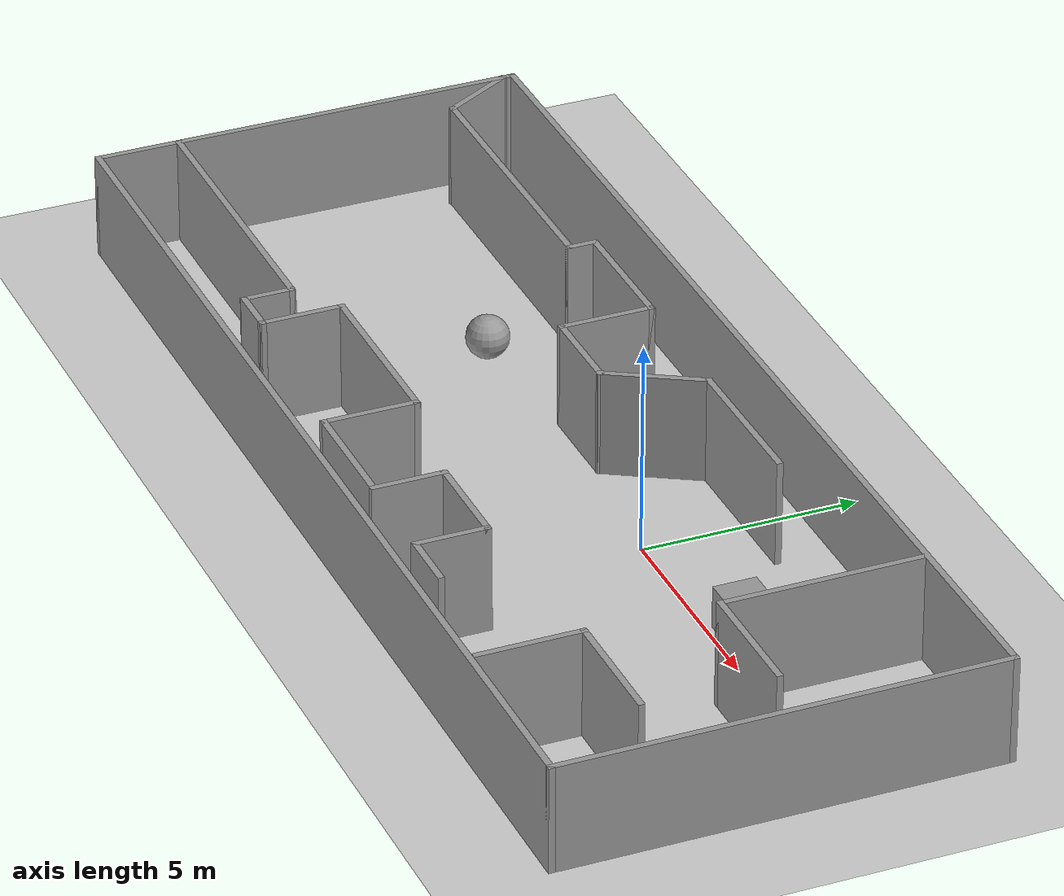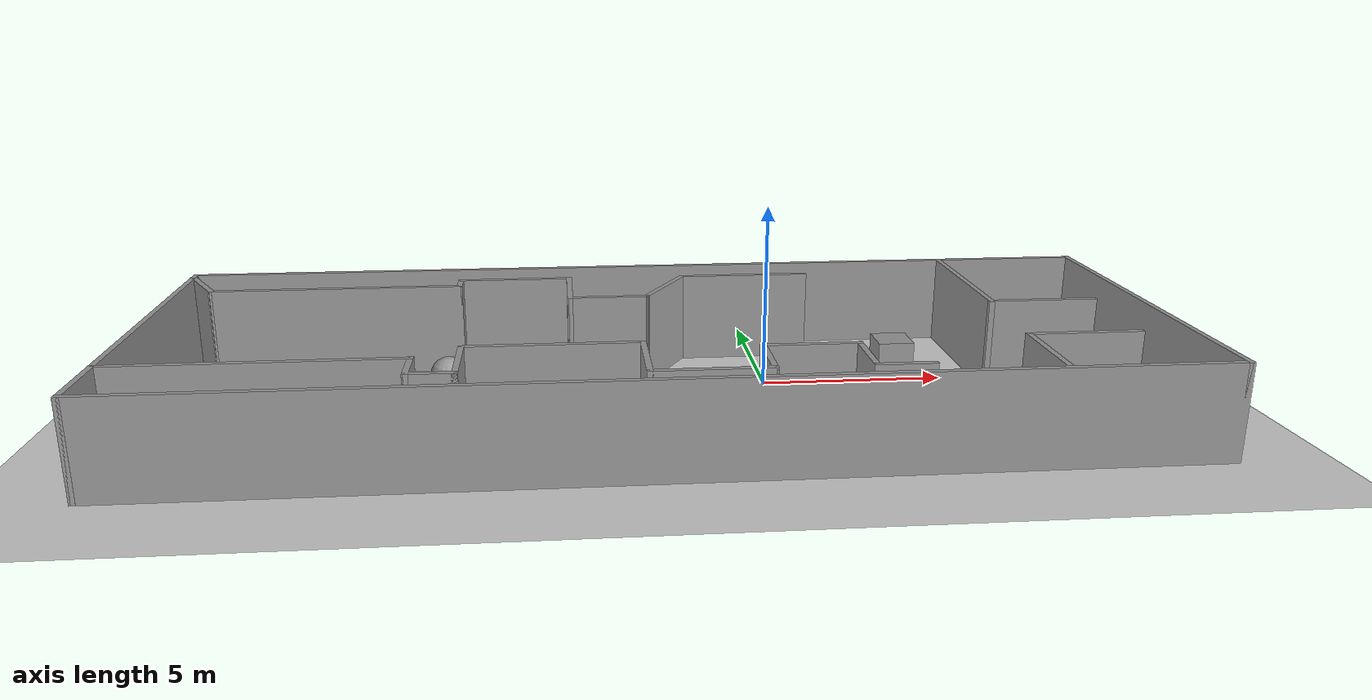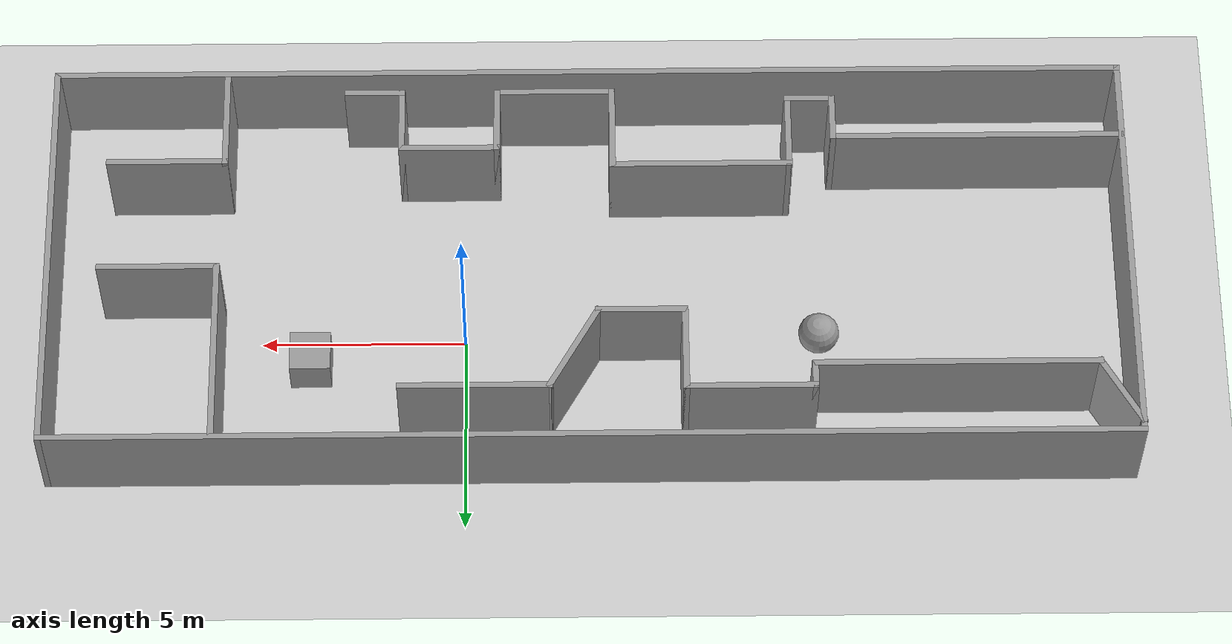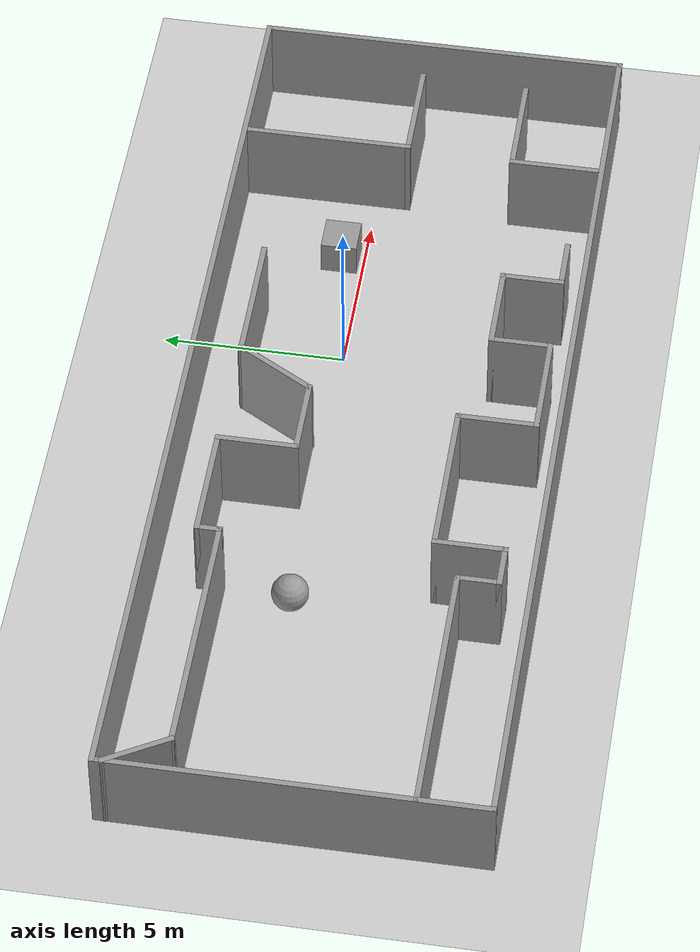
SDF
<sdf version="1.7">
 <world name="default">
  <light name="sun" type="directional">
   <pose>0 0 10 0 -0 0</pose>
   <diffuse>0.8 0.8 0.8 1</diffuse>
   <specular>0.2 0.2 0.2 1</specular>
   <attenuation>
    <range>1000</range>
    <constant>0.9</constant>
    <linear>0.01</linear>
    <quadratic>0.001</quadratic>
   </attenuation>
   <direction>-0.5 0.1 -0.9</direction>
   <spot><inner_angle>0</inner_angle><outer_angle>0</outer_angle><falloff>0</falloff></spot>
  </light>
  <model name="ground_plane">
   <static>1</static>
   <link name="link">
    <collision name="collision">
     <geometry><plane><normal>0 0 1</normal><size>100 100</size></plane></geometry>
     <surface><friction><ode><mu>100</mu><mu2>50</mu2></ode></friction></surface>
    </collision>
    <visual name="visual">
     <cast_shadows>0</cast_shadows>
     <geometry><plane><normal>0 0 1</normal><size>100 100</size></plane></geometry>
     <material>
      <script><uri>file://media/materials/scripts/gazebo.material</uri><name>Gazebo/Grey</name></script>
     </material>
    </visual>
   </link>
  </model>
  <gravity>0 0 -9.8</gravity>
  <magnetic_field>6e-06 2.3e-05 -4.2e-05</magnetic_field>
  <atmosphere type="adiabatic"/>
  <physics type="ode">
   <max_step_size>0.001</max_step_size>
   <real_time_factor>1</real_time_factor>
   <real_time_update_rate>1000</real_time_update_rate>
  </physics>
  <scene><ambient>0.4 0.4 0.4 1</ambient><background>0.7 0.7 0.7 1</background><shadows>1</shadows></scene>
  <audio><device>default</device></audio>
  <spherical_coordinates>
   <surface_model>EARTH_WGS84</surface_model>
   <latitude_deg>0</latitude_deg>
   <longitude_deg>0</longitude_deg>
   <elevation>0</elevation>
   <heading_deg>0</heading_deg>
  </spherical_coordinates>
  <model name="room1">
   <pose>-3.06349 -1.29216 0 0 -0 0</pose>
   <link name="Wall_1">
    <collision name="Wall_1_Collision">
     <geometry><box><size>10 0.15 2.5</size></box></geometry>
     <pose>0 0 1.25 0 -0 0</pose>
    </collision>
    <visual name="Wall_1_Visual">
     <pose>0 0 1.25 0 -0 0</pose>
     <geometry><box><size>10 0.15 2.5</size></box></geometry>
     <material>
      <script><uri>file://media/materials/scripts/gazebo.material</uri><name>Gazebo/Grey</name></script>
      <ambient>1 1 1 1</ambient>
     </material>
     <meta><layer>0</layer></meta>
    </visual>
    <pose>-13.1613 -0.125 0 0 -0 -1.5708</pose>
   </link>
   <link name="Wall_10">
    <collision name="Wall_10_Collision">
     <geometry><box><size>2.25 0.15 2.5</size></box></geometry>
     <pose>0 0 1.25 0 -0 0</pose>
    </collision>
    <visual name="Wall_10_Visual">
     <pose>0 0 1.25 0 -0 0</pose>
     <geometry><box><size>2.25 0.15 2.5</size></box></geometry>
     <material>
      <script><uri>file://media/materials/scripts/gazebo.material</uri><name>Gazebo/Grey</name></script>
      <ambient>1 1 1 1</ambient>
     </material>
     <meta><layer>0</layer></meta>
    </visual>
    <pose>-2.28627 2.74785 0 0 -0 -1.5708</pose>
   </link>
   <link name="Wall_11">
    <collision name="Wall_11_Collision">
     <geometry><box><size>2.25 0.15 2.5</size></box></geometry>
     <pose>0 0 1.25 0 -0 0</pose>
    </collision>
    <visual name="Wall_11_Visual">
     <pose>0 0 1.25 0 -0 0</pose>
     <geometry><box><size>2.25 0.15 2.5</size></box></geometry>
     <material>
      <script><uri>file://media/materials/scripts/gazebo.material</uri><name>Gazebo/Grey</name></script>
      <ambient>1 1 1 1</ambient>
     </material>
     <meta><layer>0</layer></meta>
    </visual>
    <pose>-1.23627 1.69785 0 0 -0 0</pose>
   </link>
   <link name="Wall_12">
    <collision name="Wall_12_Collision">
     <geometry><box><size>2.5 0.15 2.5</size></box></geometry>
     <pose>0 0 1.25 0 -0 0</pose>
    </collision>
    <visual name="Wall_12_Visual">
     <pose>0 0 1.25 0 -0 0</pose>
     <geometry><box><size>2.5 0.15 2.5</size></box></geometry>
     <material>
      <script><uri>file://media/materials/scripts/gazebo.material</uri><name>Gazebo/Grey</name></script>
      <ambient>1 1 1 1</ambient>
     </material>
     <meta><layer>0</layer></meta>
    </visual>
    <pose>0.401226 2.71543 0 0 -0 1.0472</pose>
   </link>
   <link name="Wall_13">
    <collision name="Wall_13_Collision">
     <geometry><box><size>3.75 0.15 2.5</size></box></geometry>
     <pose>0 0 1.25 0 -0 0</pose>
    </collision>
    <visual name="Wall_13_Visual">
     <pose>0 0 1.25 0 -0 0</pose>
     <geometry><box><size>3.75 0.15 2.5</size></box></geometry>
     <material>
      <script><uri>file://media/materials/scripts/gazebo.material</uri><name>Gazebo/Grey</name></script>
      <ambient>1 1 1 1</ambient>
     </material>
     <meta><layer>0</layer></meta>
    </visual>
    <pose>2.78873 3.73301 0 0 -0 0</pose>
   </link>
   <link name="Wall_15">
    <collision name="Wall_15_Collision">
     <geometry><box><size>4.75 0.15 2.5</size></box></geometry>
     <pose>0 0 1.25 0 -0 0</pose>
    </collision>
    <visual name="Wall_15_Visual">
     <pose>0 0 1.25 0 -0 0</pose>
     <geometry><box><size>4.75 0.15 2.5</size></box></geometry>
     <material>
      <script><uri>file://media/materials/scripts/gazebo.material</uri><name>Gazebo/Grey</name></script>
      <ambient>1 1 1 1</ambient>
     </material>
     <meta><layer>0</layer></meta>
    </visual>
    <pose>9.07782 2.71413 0 0 -0 -1.5708</pose>
   </link>
   <link name="Wall_16">
    <collision name="Wall_16_Collision">
     <geometry><box><size>3 0.15 2.5</size></box></geometry>
     <pose>0 0 1.25 0 -0 0</pose>
    </collision>
    <visual name="Wall_16_Visual">
     <pose>0 0 1.25 0 -0 0</pose>
     <geometry><box><size>3 0.15 2.5</size></box></geometry>
     <material>
      <script><uri>file://media/materials/scripts/gazebo.material</uri><name>Gazebo/Grey</name></script>
      <ambient>1 1 1 1</ambient>
     </material>
     <meta><layer>0</layer></meta>
    </visual>
    <pose>10.5028 0.414132 0 0 -0 0</pose>
   </link>
   <link name="Wall_18">
    <collision name="Wall_18_Collision">
     <geometry><box><size>2.5 0.15 2.5</size></box></geometry>
     <pose>0 0 1.25 0 -0 0</pose>
    </collision>
    <visual name="Wall_18_Visual">
     <pose>0 0 1.25 0 -0 0</pose>
     <geometry><box><size>2.5 0.15 2.5</size></box></geometry>
     <material>
      <script><uri>file://media/materials/scripts/gazebo.material</uri><name>Gazebo/Grey</name></script>
      <ambient>1 1 1 1</ambient>
     </material>
     <meta><layer>0</layer></meta>
    </visual>
    <pose>8.95546 -3.71665 0 0 -0 -1.5708</pose>
   </link>
   <link name="Wall_2">
    <collision name="Wall_2_Collision">
     <geometry><box><size>26.5 0.15 2.5</size></box></geometry>
     <pose>0 0 1.25 0 -0 0</pose>
    </collision>
    <visual name="Wall_2_Visual">
     <pose>0 0 1.25 0 -0 0</pose>
     <geometry><box><size>26.5 0.15 2.5</size></box></geometry>
     <material>
      <script><uri>file://media/materials/scripts/gazebo.material</uri><name>Gazebo/Grey</name></script>
      <ambient>1 1 1 1</ambient>
     </material>
     <meta><layer>0</layer></meta>
    </visual>
    <pose>0.013726 -5.05 0 0 -0 0</pose>
   </link>
   <link name="Wall_20">
    <collision name="Wall_20_Collision">
     <geometry><box><size>3 0.15 2.5</size></box></geometry>
     <pose>0 0 1.25 0 -0 0</pose>
    </collision>
    <visual name="Wall_20_Visual">
     <pose>0 0 1.25 0 -0 0</pose>
     <geometry><box><size>3 0.15 2.5</size></box></geometry>
     <material>
      <script><uri>file://media/materials/scripts/gazebo.material</uri><name>Gazebo/Grey</name></script>
      <ambient>1 1 1 1</ambient>
     </material>
     <meta><layer>0</layer></meta>
    </visual>
    <pose>10.3805 -2.54165 0 0 -0 0</pose>
   </link>
   <link name="Wall_22">
    <collision name="Wall_22_Collision">
     <geometry><box><size>7.25 0.15 2.5</size></box></geometry>
     <pose>0 0 1.25 0 -0 0</pose>
    </collision>
    <visual name="Wall_22_Visual">
     <pose>0 0 1.25 0 -0 0</pose>
     <geometry><box><size>7.25 0.15 2.5</size></box></geometry>
     <material>
      <script><uri>file://media/materials/scripts/gazebo.material</uri><name>Gazebo/Grey</name></script>
      <ambient>1 1 1 1</ambient>
     </material>
     <meta><layer>0</layer></meta>
    </visual>
    <pose>-9.58068 -3.12287 0 0 -0 0</pose>
   </link>
   <link name="Wall_23">
    <collision name="Wall_23_Collision">
     <geometry><box><size>1.25 0.15 2.5</size></box></geometry>
     <pose>0 0 1.25 0 -0 0</pose>
    </collision>
    <visual name="Wall_23_Visual">
     <pose>0 0 1.25 0 -0 0</pose>
     <geometry><box><size>1.25 0.15 2.5</size></box></geometry>
     <material>
      <script><uri>file://media/materials/scripts/gazebo.material</uri><name>Gazebo/Grey</name></script>
      <ambient>1 1 1 1</ambient>
     </material>
     <meta><layer>0</layer></meta>
    </visual>
    <pose>-6.03068 -3.67287 0 0 -0 -1.5708</pose>
   </link>
   <link name="Wall_24">
    <collision name="Wall_24_Collision">
     <geometry><box><size>1.25 0.15 2.5</size></box></geometry>
     <pose>0 0 1.25 0 -0 0</pose>
    </collision>
    <visual name="Wall_24_Visual">
     <pose>0 0 1.25 0 -0 0</pose>
     <geometry><box><size>1.25 0.15 2.5</size></box></geometry>
     <material>
      <script><uri>file://media/materials/scripts/gazebo.material</uri><name>Gazebo/Grey</name></script>
      <ambient>1 1 1 1</ambient>
     </material>
     <meta><layer>0</layer></meta>
    </visual>
    <pose>-5.48068 -4.22287 0 0 -0 0</pose>
   </link>
   <link name="Wall_25">
    <collision name="Wall_25_Collision">
     <geometry><box><size>2 0.15 2.5</size></box></geometry>
     <pose>0 0 1.25 0 -0 0</pose>
    </collision>
    <visual name="Wall_25_Visual">
     <pose>0 0 1.25 0 -0 0</pose>
     <geometry><box><size>2 0.15 2.5</size></box></geometry>
     <material>
      <script><uri>file://media/materials/scripts/gazebo.material</uri><name>Gazebo/Grey</name></script>
      <ambient>1 1 1 1</ambient>
     </material>
     <meta><layer>0</layer></meta>
    </visual>
    <pose>-4.93068 -3.29787 0 0 -0 1.5708</pose>
   </link>
   <link name="Wall_26">
    <collision name="Wall_26_Collision">
     <geometry><box><size>4.5 0.15 2.5</size></box></geometry>
     <pose>0 0 1.25 0 -0 0</pose>
    </collision>
    <visual name="Wall_26_Visual">
     <pose>0 0 1.25 0 -0 0</pose>
     <geometry><box><size>4.5 0.15 2.5</size></box></geometry>
     <material>
      <script><uri>file://media/materials/scripts/gazebo.material</uri><name>Gazebo/Grey</name></script>
      <ambient>1 1 1 1</ambient>
     </material>
     <meta><layer>0</layer></meta>
    </visual>
    <pose>-2.75568 -2.37287 0 0 -0 0</pose>
   </link>
   <link name="Wall_27">
    <collision name="Wall_27_Collision">
     <geometry><box><size>2.25 0.15 2.5</size></box></geometry>
     <pose>0 0 1.25 0 -0 0</pose>
    </collision>
    <visual name="Wall_27_Visual">
     <pose>0 0 1.25 0 -0 0</pose>
     <geometry><box><size>2.25 0.15 2.5</size></box></geometry>
     <material>
      <script><uri>file://media/materials/scripts/gazebo.material</uri><name>Gazebo/Grey</name></script>
      <ambient>1 1 1 1</ambient>
     </material>
     <meta><layer>0</layer></meta>
    </visual>
    <pose>-0.580684 -3.42287 0 0 -0 -1.5708</pose>
   </link>
   <link name="Wall_28">
    <collision name="Wall_28_Collision">
     <geometry><box><size>3 0.15 2.5</size></box></geometry>
     <pose>0 0 1.25 0 -0 0</pose>
    </collision>
    <visual name="Wall_28_Visual">
     <pose>0 0 1.25 0 -0 0</pose>
     <geometry><box><size>3 0.15 2.5</size></box></geometry>
     <material>
      <script><uri>file://media/materials/scripts/gazebo.material</uri><name>Gazebo/Grey</name></script>
      <ambient>1 1 1 1</ambient>
     </material>
     <meta><layer>0</layer></meta>
    </visual>
    <pose>0.844316 -4.47287 0 0 -0 0</pose>
   </link>
   <link name="Wall_29">
    <collision name="Wall_29_Collision">
     <geometry><box><size>1.75 0.15 2.5</size></box></geometry>
     <pose>0 0 1.25 0 -0 0</pose>
    </collision>
    <visual name="Wall_29_Visual">
     <pose>0 0 1.25 0 -0 0</pose>
     <geometry><box><size>1.75 0.15 2.5</size></box></geometry>
     <material>
      <script><uri>file://media/materials/scripts/gazebo.material</uri><name>Gazebo/Grey</name></script>
      <ambient>1 1 1 1</ambient>
     </material>
     <meta><layer>0</layer></meta>
    </visual>
    <pose>2.26932 -3.67287 0 0 -0 1.5708</pose>
   </link>
   <link name="Wall_3">
    <collision name="Wall_3_Collision">
     <geometry><box><size>10.25 0.15 2.5</size></box></geometry>
     <pose>0 0 1.25 0 -0 0</pose>
    </collision>
    <visual name="Wall_3_Visual">
     <pose>0 0 1.25 0 -0 0</pose>
     <geometry><box><size>10.25 0.15 2.5</size></box></geometry>
     <material>
      <script><uri>file://media/materials/scripts/gazebo.material</uri><name>Gazebo/Grey</name></script>
      <ambient>1 1 1 1</ambient>
     </material>
     <meta><layer>0</layer></meta>
    </visual>
    <pose>13.1887 0 0 0 -0 1.5708</pose>
   </link>
   <link name="Wall_30">
    <collision name="Wall_30_Collision">
     <geometry><box><size>2.5 0.15 2.5</size></box></geometry>
     <pose>0 0 1.25 0 -0 0</pose>
    </collision>
    <visual name="Wall_30_Visual">
     <pose>0 0 1.25 0 -0 0</pose>
     <geometry><box><size>2.5 0.15 2.5</size></box></geometry>
     <material>
      <script><uri>file://media/materials/scripts/gazebo.material</uri><name>Gazebo/Grey</name></script>
      <ambient>1 1 1 1</ambient>
     </material>
     <meta><layer>0</layer></meta>
    </visual>
    <pose>3.44432 -2.87287 0 0 -0 0</pose>
   </link>
   <link name="Wall_31">
    <collision name="Wall_31_Collision">
     <geometry><box><size>1.75 0.15 2.5</size></box></geometry>
     <pose>0 0 1.25 0 -0 0</pose>
    </collision>
    <visual name="Wall_31_Visual">
     <pose>0 0 1.25 0 -0 0</pose>
     <geometry><box><size>1.75 0.15 2.5</size></box></geometry>
     <material>
      <script><uri>file://media/materials/scripts/gazebo.material</uri><name>Gazebo/Grey</name></script>
      <ambient>1 1 1 1</ambient>
     </material>
     <meta><layer>0</layer></meta>
    </visual>
    <pose>4.61932 -3.67287 0 0 -0 -1.5708</pose>
   </link>
   <link name="Wall_32">
    <collision name="Wall_32_Collision">
     <geometry><box><size>1.5 0.15 2.5</size></box></geometry>
     <pose>0 0 1.25 0 -0 0</pose>
    </collision>
    <visual name="Wall_32_Visual">
     <pose>0 0 1.25 0 -0 0</pose>
     <geometry><box><size>1.5 0.15 2.5</size></box></geometry>
     <material>
      <script><uri>file://media/materials/scripts/gazebo.material</uri><name>Gazebo/Grey</name></script>
      <ambient>1 1 1 1</ambient>
     </material>
     <meta><layer>0</layer></meta>
    </visual>
    <pose>5.29432 -4.47287 0 0 -0 0</pose>
   </link>
   <link name="Wall_4">
    <collision name="Wall_4_Collision">
     <geometry><box><size>26.5 0.15 2.5</size></box></geometry>
     <pose>0 0 1.25 0 -0 0</pose>
    </collision>
    <visual name="Wall_4_Visual">
     <pose>0 0 1.25 0 -0 0</pose>
     <geometry><box><size>26.5 0.15 2.5</size></box></geometry>
     <material>
      <script><uri>file://media/materials/scripts/gazebo.material</uri><name>Gazebo/Grey</name></script>
      <ambient>1 1 1 1</ambient>
     </material>
     <meta><layer>0</layer></meta>
    </visual>
    <pose>0.013726 5.05 0 0 -0 3.14159</pose>
   </link>
   <link name="Wall_5">
    <collision name="Wall_5_Collision">
     <geometry><box><size>0.4 0.15 2.5</size></box></geometry>
     <pose>0 0 1.25 0 -0 0</pose>
    </collision>
    <visual name="Wall_5_Visual">
     <pose>0 0 1.25 0 -0 0</pose>
     <geometry><box><size>0.4 0.15 2.5</size></box></geometry>
     <material>
      <script><uri>file://media/materials/scripts/gazebo.material</uri><name>Gazebo/Grey</name></script>
      <ambient>1 1 1 1</ambient>
     </material>
     <meta><layer>0</layer></meta>
    </visual>
    <pose>-13.1613 4.925 0 0 -0 -1.5708</pose>
   </link>
   <link name="Wall_6">
    <collision name="Wall_6_Collision">
     <geometry><box><size>2 0.15 2.5</size></box></geometry>
     <pose>0 0 1.25 0 -0 0</pose>
    </collision>
    <visual name="Wall_6_Visual">
     <pose>0 0 1.25 0 -0 0</pose>
     <geometry><box><size>2 0.15 2.5</size></box></geometry>
     <material>
      <script><uri>file://media/materials/scripts/gazebo.material</uri><name>Gazebo/Grey</name></script>
      <ambient>1 1 1 1</ambient>
     </material>
     <meta><layer>0</layer></meta>
    </visual>
    <pose>-12.6988 3.99893 0 0 -0 -1.0472</pose>
   </link>
   <link name="Wall_7">
    <collision name="Wall_7_Collision">
     <geometry><box><size>7 0.15 2.5</size></box></geometry>
     <pose>0 0 1.25 0 -0 0</pose>
    </collision>
    <visual name="Wall_7_Visual">
     <pose>0 0 1.25 0 -0 0</pose>
     <geometry><box><size>7 0.15 2.5</size></box></geometry>
     <material>
      <script><uri>file://media/materials/scripts/gazebo.material</uri><name>Gazebo/Grey</name></script>
      <ambient>1 1 1 1</ambient>
     </material>
     <meta><layer>0</layer></meta>
    </visual>
    <pose>-8.81128 3.19785 0 0 -0 0</pose>
   </link>
   <link name="Wall_8">
    <collision name="Wall_8_Collision">
     <geometry><box><size>0.75 0.15 2.5</size></box></geometry>
     <pose>0 0 1.25 0 -0 0</pose>
    </collision>
    <visual name="Wall_8_Visual">
     <pose>0 0 1.25 0 -0 0</pose>
     <geometry><box><size>0.75 0.15 2.5</size></box></geometry>
     <material>
      <script><uri>file://media/materials/scripts/gazebo.material</uri><name>Gazebo/Grey</name></script>
      <ambient>1 1 1 1</ambient>
     </material>
     <meta><layer>0</layer></meta>
    </visual>
    <pose>-5.38627 3.49785 0 0 -0 1.5708</pose>
   </link>
   <link name="Wall_9">
    <collision name="Wall_9_Collision">
     <geometry><box><size>3.25 0.15 2.5</size></box></geometry>
     <pose>0 0 1.25 0 -0 0</pose>
    </collision>
    <visual name="Wall_9_Visual">
     <pose>0 0 1.25 0 -0 0</pose>
     <geometry><box><size>3.25 0.15 2.5</size></box></geometry>
     <material>
      <script><uri>file://media/materials/scripts/gazebo.material</uri><name>Gazebo/Grey</name></script>
      <ambient>1 1 1 1</ambient>
     </material>
     <meta><layer>0</layer></meta>
    </visual>
    <pose>-3.83627 3.79785 0 0 -0 0</pose>
   </link>
   <static>1</static>
  </model>
  <model name="unit_box">
   <pose>3.78958 0.666908 0.499995 -1e-05 -0 0</pose>
   <link name="link">
    <inertial>
     <mass>1</mass>
     <inertia>
      <ixx>0.166667</ixx>
      <ixy>0</ixy>
      <ixz>0</ixz>
      <iyy>0.166667</iyy>
      <iyz>0</iyz>
      <izz>0.166667</izz>
     </inertia>
    </inertial>
    <collision name="collision"><geometry><box><size>1 1 1</size></box></geometry></collision>
    <visual name="visual">
     <geometry><box><size>1 1 1</size></box></geometry>
     <material>
      <script><name>Gazebo/Grey</name><uri>file://media/materials/scripts/gazebo.material</uri></script>
     </material>
    </visual>
   </link>
  </model>
  <model name="unit_sphere">
   <pose>-8.68037 0.036514 0.5 0 -0 0</pose>
   <link name="link">
    <inertial>
     <mass>1</mass>
     <inertia><ixx>0.1</ixx><ixy>0</ixy><ixz>0</ixz><iyy>0.1</iyy><iyz>0</iyz><izz>0.1</izz></inertia>
    </inertial>
    <collision name="collision"><geometry><sphere><radius>0.5</radius></sphere></geometry></collision>
    <visual name="visual">
     <geometry><sphere><radius>0.5</radius></sphere></geometry>
     <material>
      <script><name>Gazebo/Grey</name><uri>file://media/materials/scripts/gazebo.material</uri></script>
     </material>
    </visual>
   </link>
  </model>
 </world>
</sdf>
